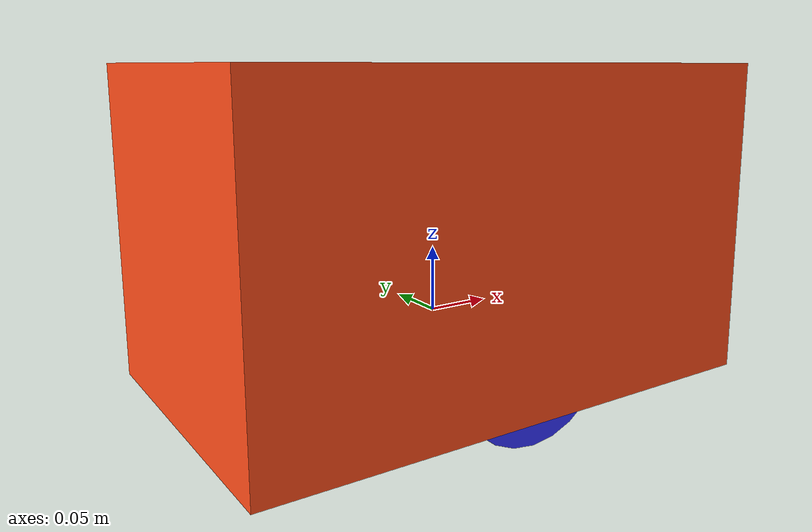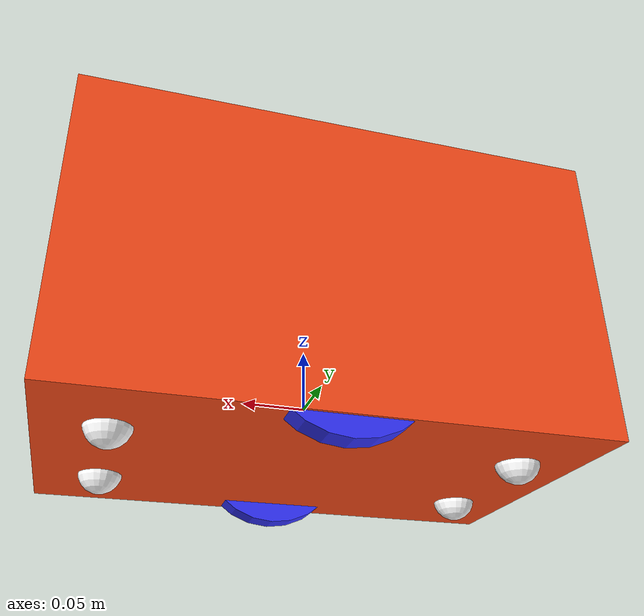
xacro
<?xml version="1.0"?>
<robot xmlns:xacro="http://www.ros.org/wiki/xacro" >

    <xacro:include filename="inertial_macros.xacro"/>

    <xacro:property name="chassis_length" value="0.4068"/>
    <xacro:property name="chassis_width" value="0.250"/>
    <xacro:property name="chassis_height" value="0.24"/>
    <xacro:property name="chassis_mass" value="10.0"/>
    <xacro:property name="wheel_radius" value="0.066"/>
    <xacro:property name="wheel_thickness" value="0.020"/>
    <xacro:property name="wheel_mass" value="1.0"/>
    <xacro:property name="wheel_offset_x" value="0.2034"/>
    <xacro:property name="wheel_offset_y" value="0.1125"/>
    <xacro:property name="wheel_offset_z" value="0.050"/>
    <xacro:property name="caster_wheel_radius" value="0.0175"/>
    <xacro:property name="caster_wheel_mass" value="0.1"/>
    <xacro:property name="caster_wheel_offset_x" value="0.075"/>
    <xacro:property name="caster_wheel_offset_z" value="${wheel_offset_z - wheel_radius + caster_wheel_radius}"/>

    <material name="white">
        <color rgba="1 1 1 1" />
    </material>

    <material name="orange">
        <color rgba="1 0.3 0.1 1"/>
    </material>

    <material name="blue">
        <color rgba="0.2 0.2 1 1"/>
    </material>

    <material name="black">
        <color rgba="0 0 0 1"/>
    </material>

    <material name="red">
        <color rgba="1 0 0 1"/>
    </material>

    <!-- BASE LINK -->

    <link name="base_link">

    </link>

    <!-- BASE_FOOTPRINT LINK -->

    <joint name="base_footprint_joint" type="fixed">
        <parent link="base_link"/>
        <child link="base_footprint"/>
        <origin xyz="0 0 0" rpy="0 0 0"/>
    </joint>

    <link name="base_footprint">
    </link>

    <!-- CHASSIS LINK -->

    <joint name="chassis_joint" type="fixed">
        <parent link="base_link"/>
        <child link="chassis"/>
        <origin xyz="${-wheel_offset_x} 0 ${-wheel_offset_z}"/>
    </joint>

    <link name="chassis">
        <visual>
            <origin xyz="${chassis_length/2} 0 ${chassis_height/2}"/>
            <geometry>
                <box size="${chassis_length} ${chassis_width} ${chassis_height}"/>
            </geometry>
            <material name="orange"/>
        </visual>
        <collision>
            <origin xyz="${chassis_length/2} 0 ${chassis_height/2}"/>
            <geometry>
                <box size="${chassis_length} ${chassis_width} ${chassis_height}"/>
            </geometry>
            <material name="orange"/>
        </collision>
        <xacro:inertial_box mass="0.5" x="${chassis_length}" y="${chassis_width}" z="${chassis_height}">
            <origin xyz="${chassis_length/2} 0 ${chassis_height/2}" rpy="0 0 0"/>
        </xacro:inertial_box>
    </link>

    <gazebo reference="chassis">
        <material>Gazebo/Orange</material>
    </gazebo>

    <!-- LEFT WHEEL LINK -->

    <joint name="left_wheel_joint" type="continuous">
        <parent link="base_link"/>
        <child link="left_wheel"/>
        <origin xyz="0 ${wheel_offset_y} 0" rpy="-${pi/2} 0 0" />
        <axis xyz="0 0 1"/>
        <joint_properties damping="0.0" friction="0.0" stiffness="0.1"/>

    </joint>

    <link name="left_wheel">
        <visual>
            <geometry>
                <cylinder radius="${wheel_radius}" length="${wheel_thickness}"/>
            </geometry>
            <material name="blue"/>
        </visual>
        <collision>
            <geometry>
                <cylinder radius="${wheel_radius}" length="${wheel_thickness}"/>
            </geometry>
        </collision>
        <xacro:inertial_cylinder mass="${wheel_mass}" length="${wheel_thickness}" radius="${wheel_radius}">
            <origin xyz="0 0 0" rpy="0 0 0"/>
        </xacro:inertial_cylinder>
    </link>

    <gazebo reference="left_wheel">
        <material>Gazebo/Blue</material>
        <mu1>10.0</mu1>
        <mu2>10.0</mu2>
    </gazebo>

    <!-- RIGHT WHEEL LINK -->

    <joint name="right_wheel_joint" type="continuous">
        <parent link="base_link"/>
        <child link="right_wheel"/>
        <origin xyz="0 ${-wheel_offset_y} 0" rpy="${pi/2} 0 0" />
        <axis xyz="0 0 -1"/>
    <joint_properties damping="0.0" friction="0.0" stiffness="0.1"/>
    </joint>

    <link name="right_wheel">
        <visual>
            <geometry>
                <cylinder radius="${wheel_radius}" length="${wheel_thickness}"/>
            </geometry>
            <material name="blue"/>
        </visual>
        <collision>
            <geometry>
                <cylinder radius="${wheel_radius}" length="${wheel_thickness}"/>
            </geometry>
        </collision>
        <xacro:inertial_cylinder mass="${wheel_mass}" length="${wheel_thickness}" radius="${wheel_radius}">
            <origin xyz="0 0 0" rpy="0 0 0"/>
        </xacro:inertial_cylinder>
    </link>

    <gazebo reference="right_wheel">
        <material>Gazebo/Blue</material>
        <mu1>10.0</mu1>
        <mu2>10.0</mu2>
    </gazebo>

    <!-- CASTER WHEEL LINK -->

    <joint name="caster_wheel_joint1" type="fixed">
        <parent link="chassis"/>
        <child link="caster_wheel1"/>
        <origin xyz="0.0494 0.0565 0.0025"/>
    </joint>

    <joint name="caster_wheel_joint2" type="fixed">
        <parent link="chassis"/>
        <child link="caster_wheel2"/>
        <origin xyz="0.0494 -0.0565 0.0025"/>
    </joint>

    <joint name="caster_wheel_joint3" type="fixed">
        <parent link="chassis"/>
        <child link="caster_wheel3"/>
        <origin xyz="0.3554 0.0565 0.0025"/>
    </joint>

    <joint name="caster_wheel_joint4" type="fixed">
        <parent link="chassis"/>
        <child link="caster_wheel4"/>
        <origin xyz="0.3554 -0.0565 0.0025"/>
    </joint>

    <link name="caster_wheel1">
        <visual>
            <geometry>
                <sphere radius="${caster_wheel_radius}"/>
            </geometry>
            <material name="white"/>
        </visual>
        <collision>
            <geometry>
                <sphere radius="${caster_wheel_radius}"/>
            </geometry>
        </collision>
        <xacro:inertial_sphere mass="${caster_wheel_mass}" radius="${caster_wheel_radius}">
            <origin xyz="0 0 0" rpy="0 0 0"/>
        </xacro:inertial_sphere>
    </link>

    <link name="caster_wheel2">
        <visual>
            <geometry>
                <sphere radius="${caster_wheel_radius}"/>
            </geometry>
            <material name="white"/>
        </visual>
        <collision>
            <geometry>
                <sphere radius="${caster_wheel_radius}"/>
            </geometry>
        </collision>
        <xacro:inertial_sphere mass="${caster_wheel_mass}" radius="${caster_wheel_radius}">
            <origin xyz="0 0 0" rpy="0 0 0"/>
        </xacro:inertial_sphere>
    </link>

    <link name="caster_wheel3">
        <visual>
            <geometry>
                <sphere radius="${caster_wheel_radius}"/>
            </geometry>
            <material name="white"/>
        </visual>
        <collision>
            <geometry>
                <sphere radius="${caster_wheel_radius}"/>
            </geometry>
        </collision>
        <xacro:inertial_sphere mass="${caster_wheel_mass}" radius="${caster_wheel_radius}">
            <origin xyz="0 0 0" rpy="0 0 0"/>
        </xacro:inertial_sphere>
    </link>

    <link name="caster_wheel4">
        <visual>
            <geometry>
                <sphere radius="${caster_wheel_radius}"/>
            </geometry>
            <material name="white"/>
        </visual>
        <collision>
            <geometry>
                <sphere radius="${caster_wheel_radius}"/>
            </geometry>
        </collision>
        <xacro:inertial_sphere mass="${caster_wheel_mass}" radius="${caster_wheel_radius}">
            <origin xyz="0 0 0" rpy="0 0 0"/>
        </xacro:inertial_sphere>
    </link>

    <gazebo reference="caster_wheel">
        <material>Gazebo/White</material>
        <mu1>0.0</mu1>
        <mu2>0.0</mu2>
    </gazebo>

</robot>
